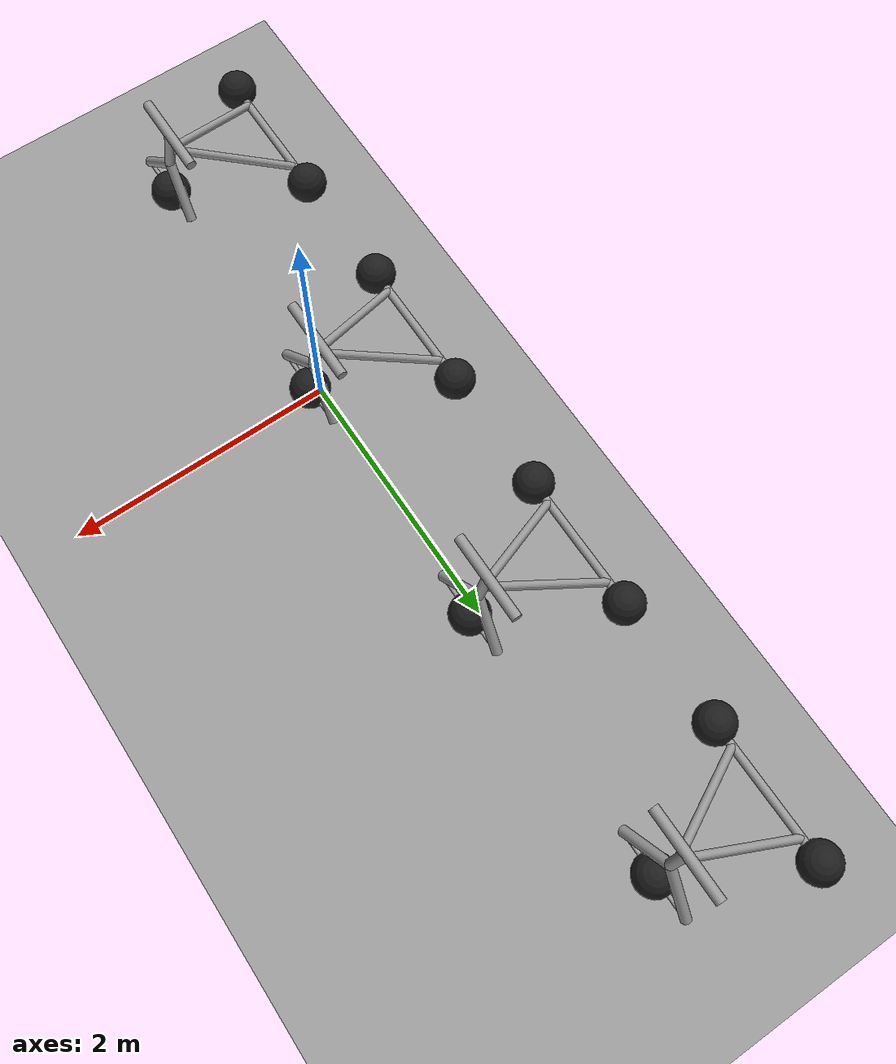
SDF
<?xml version="1.0" ?>
<sdf version="1.6">
  <world name="default">
    <gravity>-2 0 -9.75</gravity>
    <include>
      <uri>model://plowing_effect_ground_plane</uri>
    </include>
    <include>
      <uri>model://sun</uri>
    </include>

    <include>
      <uri>model://plowing_effect_trisphere_cycle</uri>
      <name>plowing_tricycle_no_slip</name>
      <pose>0 -2 0  0 0 0</pose>

      <plugin name="wheel_slip" filename="libWheelSlipPlugin.so">
        <wheel link_name="wheel_front">
          <slip_compliance_lateral>0</slip_compliance_lateral>
          <slip_compliance_longitudinal>0</slip_compliance_longitudinal>
          <wheel_normal_force>32</wheel_normal_force>
        </wheel>
        <wheel link_name="wheel_rear_left">
          <slip_compliance_lateral>0</slip_compliance_lateral>
          <slip_compliance_longitudinal>0</slip_compliance_longitudinal>
          <wheel_normal_force>32</wheel_normal_force>
        </wheel>
        <wheel link_name="wheel_rear_right">
          <slip_compliance_lateral>0</slip_compliance_lateral>
          <slip_compliance_longitudinal>0</slip_compliance_longitudinal>
          <wheel_normal_force>32</wheel_normal_force>
        </wheel>
      </plugin>

      <plugin name="joint_control" filename="libJointControlPlugin.so">
        <controller type="position">
          <joint>wheel_front_steer</joint>
          <target>0</target>
          <pid_gains>9 0 0.1</pid_gains>
        </controller>
        <controller type="velocity">
          <joint>wheel_rear_left_spin</joint>
          <joint>wheel_rear_right_spin</joint>
          <joint>wheel_front_spin</joint>
          <target>6.0</target>
          <pid_gains>9 0 0</pid_gains>
        </controller>
        <controller type="force">
          <joint>wheel_rear_left_spin</joint>
          <joint>wheel_rear_right_spin</joint>
          <target>2.15</target>
        </controller>
      </plugin>

    </include>

    <include>
      <uri>model://plowing_effect_trisphere_cycle</uri>
      <name>plowing_tricycle</name>
      <pose>0 0 0  0 0 0</pose>

      <plugin name="wheel_slip" filename="libWheelSlipPlugin.so">
        <wheel link_name="wheel_front">
          <slip_compliance_lateral>1.5</slip_compliance_lateral>
          <slip_compliance_longitudinal>1.5</slip_compliance_longitudinal>
          <wheel_normal_force>32</wheel_normal_force>
        </wheel>
        <wheel link_name="wheel_rear_left">
          <slip_compliance_lateral>1.5</slip_compliance_lateral>
          <slip_compliance_longitudinal>1.5</slip_compliance_longitudinal>
          <wheel_normal_force>32</wheel_normal_force>
        </wheel>
        <wheel link_name="wheel_rear_right">
          <slip_compliance_lateral>1.5</slip_compliance_lateral>
          <slip_compliance_longitudinal>1.5</slip_compliance_longitudinal>
          <wheel_normal_force>32</wheel_normal_force>
        </wheel>
      </plugin>

      <plugin name="joint_control" filename="libJointControlPlugin.so">
        <controller type="position">
          <joint>wheel_front_steer</joint>
          <target>0</target>
          <pid_gains>9 0 0.1</pid_gains>
        </controller>
        <controller type="velocity">
          <joint>wheel_rear_left_spin</joint>
          <joint>wheel_rear_right_spin</joint>
          <joint>wheel_front_spin</joint>
          <target>6.0</target>
          <pid_gains>9 0 0</pid_gains>
        </controller>
        <controller type="force">
          <joint>wheel_rear_left_spin</joint>
          <joint>wheel_rear_right_spin</joint>
          <target>2.15</target>
        </controller>
      </plugin>

    </include>

    <include>
      <uri>model://plowing_nonlinear_slip_trisphere_cycle</uri>
      <name>nonlinear_slip_tricycle</name>
      <pose>0 2 0  0 0 0</pose>

      <plugin name="wheel_slip" filename="libWheelSlipPlugin.so">
        <wheel link_name="wheel_front">
          <slip_compliance_lateral>1.5</slip_compliance_lateral>
          <slip_compliance_longitudinal>1.5</slip_compliance_longitudinal>
          <wheel_normal_force>32</wheel_normal_force>
        </wheel>
        <wheel link_name="wheel_rear_left">
          <slip_compliance_lateral>1.5</slip_compliance_lateral>
          <slip_compliance_longitudinal>1.5</slip_compliance_longitudinal>
          <wheel_normal_force>32</wheel_normal_force>
        </wheel>
        <wheel link_name="wheel_rear_right">
          <slip_compliance_lateral>1.5</slip_compliance_lateral>
          <slip_compliance_longitudinal>1.5</slip_compliance_longitudinal>
          <wheel_normal_force>32</wheel_normal_force>
        </wheel>
      </plugin>

      <plugin name="joint_control" filename="libJointControlPlugin.so">
        <controller type="position">
          <joint>wheel_front_steer</joint>
          <target>0</target>
          <pid_gains>9 0 0.1</pid_gains>
        </controller>
        <controller type="velocity">
          <joint>wheel_rear_left_spin</joint>
          <joint>wheel_rear_right_spin</joint>
          <joint>wheel_front_spin</joint>
          <target>6.0</target>
          <pid_gains>9 0 0</pid_gains>
        </controller>
        <controller type="force">
          <joint>wheel_rear_left_spin</joint>
          <joint>wheel_rear_right_spin</joint>
          <target>2.15</target>
        </controller>
      </plugin>

    </include>

    <include>
      <uri>model://plowing_effect_trisphere_cycle</uri>
      <name>plowing_tricycle_higher_slip_compliance</name>
      <pose>0 4 0  0 0 0</pose>

      <plugin name="wheel_slip" filename="libWheelSlipPlugin.so">
        <wheel link_name="wheel_front">
          <slip_compliance_lateral>3.0</slip_compliance_lateral>
          <slip_compliance_longitudinal>3.0</slip_compliance_longitudinal>
          <wheel_normal_force>32</wheel_normal_force>
        </wheel>
        <wheel link_name="wheel_rear_left">
          <slip_compliance_lateral>3.0</slip_compliance_lateral>
          <slip_compliance_longitudinal>3.0</slip_compliance_longitudinal>
          <wheel_normal_force>32</wheel_normal_force>
        </wheel>
        <wheel link_name="wheel_rear_right">
          <slip_compliance_lateral>3.0</slip_compliance_lateral>
          <slip_compliance_longitudinal>3.0</slip_compliance_longitudinal>
          <wheel_normal_force>32</wheel_normal_force>
        </wheel>
      </plugin>

      <plugin name="joint_control" filename="libJointControlPlugin.so">
        <controller type="position">
          <joint>wheel_front_steer</joint>
          <target>0</target>
          <pid_gains>9 0 0.1</pid_gains>
        </controller>
        <controller type="velocity">
          <joint>wheel_rear_left_spin</joint>
          <joint>wheel_rear_right_spin</joint>
          <joint>wheel_front_spin</joint>
          <target>6.0</target>
          <pid_gains>9 0 0</pid_gains>
        </controller>
        <controller type="force">
          <joint>wheel_rear_left_spin</joint>
          <joint>wheel_rear_right_spin</joint>
          <target>2.15</target>
        </controller>
      </plugin>

    </include>

    <gui fullscreen='0'>
      <camera name='user_camera'>
        <pose>1.5 -4 2.5  0 0.5 1.6</pose>
        <view_controller>orbit</view_controller>
      </camera>
    </gui>
  </world>
</sdf>

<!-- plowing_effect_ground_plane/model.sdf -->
<sdf version="1.5">
  <model name="plowing_effect_ground_plane" xmlns:gz="https://gazebosim.org/schema">
    <static>true</static>
    <link name="link">
      <collision name="collision">
        <gz:plowing_terrain />
        <geometry>
          <plane>
            <normal>0 0 1</normal>
            <size>100 100</size>
          </plane>
        </geometry>
        <surface>
          <contact>
             <collide_bitmask>0xffff</collide_bitmask>
          </contact>
          <friction>
            <ode>
              <mu>100</mu>
              <mu2>50</mu2>
            </ode>
          </friction>
        </surface>
      </collision>
      <visual name="visual">
        <cast_shadows>false</cast_shadows>
        <geometry>
          <plane>
            <normal>0 0 1</normal>
            <size>100 100</size>
          </plane>
        </geometry>
        <material>
          <script>
            <uri>file://media/materials/scripts/gazebo.material</uri>
            <name>Gazebo/Grey</name>
          </script>
        </material>
      </visual>
    </link>
  </model>
</sdf>

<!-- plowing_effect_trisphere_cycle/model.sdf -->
<sdf version="1.6">
  <model name="plowing_effect_trisphere_cycle" xmlns:gz="https://gazebosim.org/schema">
    <link name="frame">
      <pose>-0.40855911616047164 0 0.38502293110800634  0 -0.522020852957719 0</pose>
      <inertial>
        <pose>0.0 0 0  0 0 0</pose>
        <mass>10</mass>
        <inertia>
          <ixx>0.22799999999999998</ixx>
          <iyy>0.7435210984814149</iyy>
          <izz>0.9655210984814149</izz>
          <ixy>0</ixy>
          <ixz>0</ixz>
          <iyz>0</iyz>
        </inertia>
      </inertial>
      <collision name="axle_collision">
        <pose>-0.4713346258704366 0 0  1.5707963267948966 0 0</pose>
        <geometry>
          <cylinder>
            <length>1.0392304845413263</length>
            <radius>0.03</radius>
          </cylinder>
        </geometry>
      </collision>
      <visual name="axle_visual">
        <pose>-0.4713346258704366 0 0  1.5707963267948966 0 0</pose>
        <geometry>
          <cylinder>
            <length>1.0392304845413263</length>
            <radius>0.03</radius>
          </cylinder>
        </geometry>
        <material>
          <script>
            <uri>file://media/materials/scripts/gazebo.material</uri>
            <name>Gazebo/Grey</name>
          </script>
        </material>
      </visual>
      <collision name="frame_left_collision">
        <pose>0 0.17155177419583564 0  0 1.5707963267948966 -0.3490658503988659</pose>
        <geometry>
          <cylinder>
            <length>1.0031676644991372</length>
            <radius>0.03</radius>
          </cylinder>
        </geometry>
      </collision>
      <visual name="frame_left_visual">
        <pose>0 0.17155177419583564 0  0 1.5707963267948966 -0.3490658503988659</pose>
        <geometry>
          <cylinder>
            <length>1.0031676644991372</length>
            <radius>0.03</radius>
          </cylinder>
        </geometry>
        <material>
          <script>
            <uri>file://media/materials/scripts/gazebo.material</uri>
            <name>Gazebo/Grey</name>
          </script>
        </material>
      </visual>
      <collision name="frame_right_collision">
        <pose>0 -0.17155177419583564 0  0 1.5707963267948966 0.3490658503988659</pose>
        <geometry>
          <cylinder>
            <length>1.0031676644991372</length>
            <radius>0.03</radius>
          </cylinder>
        </geometry>
      </collision>
      <visual name="frame_right_visual">
        <pose>0 -0.17155177419583564 0  0 1.5707963267948966 0.3490658503988659</pose>
        <geometry>
          <cylinder>
            <length>1.0031676644991372</length>
            <radius>0.03</radius>
          </cylinder>
        </geometry>
        <material>
          <script>
            <uri>file://media/materials/scripts/gazebo.material</uri>
            <name>Gazebo/Grey</name>
          </script>
        </material>
      </visual>
    </link>
    <link name="fork">
      <pose>0.04144088383952833 0 0.38502293110800634  0 -0.17453292519943295 0</pose>
      <inertial>
        <mass>3</mass>
        <inertia>
          <ixx>0.15820312499999997</ixx>
          <iyy>0.058359374999999984</iyy>
          <izz>0.10265624999999999</izz>
          <ixy>0</ixy>
          <ixz>0</ixz>
          <iyz>0</iyz>
        </inertia>
      </inertial>
      <collision name="handlebars_collision">
        <pose>0 0 0.397747564417433  1.5707963267948966 0 0</pose>
        <geometry>
          <cylinder>
            <length>0.6363961030678927</length>
            <radius>0.0375</radius>
          </cylinder>
        </geometry>
      </collision>
      <visual name="handlebars_visual">
        <pose>0 0 0.397747564417433  1.5707963267948966 0 0</pose>
        <geometry>
          <cylinder>
            <length>0.6363961030678927</length>
            <radius>0.0375</radius>
          </cylinder>
        </geometry>
        <material>
          <script>
            <uri>file://media/materials/scripts/gazebo.material</uri>
            <name>Gazebo/Grey</name>
          </script>
        </material>
      </visual>
      <collision name="headtube_collision">
        <pose>0 0 0.2386485386504598  0 0 0</pose>
        <geometry>
          <cylinder>
            <length>0.31819805153394637</length>
            <radius>0.0375</radius>
          </cylinder>
        </geometry>
      </collision>
      <visual name="headtube_visual">
        <pose>0 0 0.2386485386504598  0 0 0</pose>
        <geometry>
          <cylinder>
            <length>0.31819805153394637</length>
            <radius>0.0375</radius>
          </cylinder>
        </geometry>
        <material>
          <script>
            <uri>file://media/materials/scripts/gazebo.material</uri>
            <name>Gazebo/Grey</name>
          </script>
        </material>
      </visual>
      <collision name="spindle_collision">
        <pose>0 0 -0.23864853865045976  1.5707963267948966 0 0</pose>
        <geometry>
          <cylinder>
            <length>0.6363961030678927</length>
            <radius>0.015</radius>
          </cylinder>
        </geometry>
      </collision>
      <visual name="spindle_visual">
        <pose>0 0 -0.23864853865045976  1.5707963267948966 0 0</pose>
        <geometry>
          <cylinder>
            <length>0.6363961030678927</length>
            <radius>0.015</radius>
          </cylinder>
        </geometry>
        <material>
          <script>
            <uri>file://media/materials/scripts/gazebo.material</uri>
            <name>Gazebo/Grey</name>
          </script>
        </material>
      </visual>
      <collision name="fork_left_collision">
        <pose>0 0.15909902576697318 -0.07954951288348658  0.7853981633974483 0 0</pose>
        <geometry>
          <cylinder>
            <length>0.45</length>
            <radius>0.0375</radius>
          </cylinder>
        </geometry>
      </collision>
      <visual name="fork_left_visual">
        <pose>0 0.15909902576697318 -0.07954951288348658  0.7853981633974483 0 0</pose>
        <geometry>
          <cylinder>
            <length>0.45</length>
            <radius>0.0375</radius>
          </cylinder>
        </geometry>
        <material>
          <script>
            <uri>file://media/materials/scripts/gazebo.material</uri>
            <name>Gazebo/Grey</name>
          </script>
        </material>
      </visual>
      <collision name="fork_right_collision">
        <pose>0 -0.15909902576697318 -0.07954951288348658  -0.7853981633974483 0 0</pose>
        <geometry>
          <cylinder>
            <length>0.45</length>
            <radius>0.0375</radius>
          </cylinder>
        </geometry>
      </collision>
      <visual name="fork_right_visual">
        <pose>0 -0.15909902576697318 -0.07954951288348658  -0.7853981633974483 0 0</pose>
        <geometry>
          <cylinder>
            <length>0.45</length>
            <radius>0.0375</radius>
          </cylinder>
        </geometry>
        <material>
          <script>
            <uri>file://media/materials/scripts/gazebo.material</uri>
            <name>Gazebo/Grey</name>
          </script>
        </material>
      </visual>
    </link>
    <link name="wheel_front">
      <pose>0.08288176767905665 0 0.15  0 0 0</pose>
      <inertial>
        <mass>0.5</mass>
        <inertia>
          <ixx>0.0045</ixx>
          <iyy>0.0045</iyy>
          <izz>0.0045</izz>
          <ixy>0</ixy>
          <ixz>0</ixz>
          <iyz>0</iyz>
        </inertia>
      </inertial>
      <collision name="collision">
        <gz:plowing_wheel>
          <max_degrees>5</max_degrees>
          <deadband_velocity>0.3</deadband_velocity>
          <saturation_velocity>0.4</saturation_velocity>
        </gz:plowing_wheel>
        <geometry>
          <sphere>
            <radius>0.15</radius>
          </sphere>
        </geometry>
        <surface>
          <contact>
            <ode>
              <kp>4000</kp>
              <kd>16</kd>
              <max_vel>10</max_vel>
              <min_depth>0.0005</min_depth>
            </ode>
          </contact>
          <friction>
            <ode>
              <mu>0.7</mu>
              <mu2>0.7</mu2>
              <fdir1>0 1 0</fdir1>
            </ode>
          </friction>
        </surface>
      </collision>
      <visual name="visual">
        <geometry>
          <sphere>
            <radius>0.15</radius>
          </sphere>
        </geometry>
        <material>
          <script>
            <uri>file://media/materials/scripts/gazebo.material</uri>
            <name>Gazebo/Black</name>
          </script>
        </material>
      </visual>
    </link>
    <joint name="wheel_front_steer" type="revolute">
      <parent>frame</parent>
      <child>fork</child>
      <axis>
        <xyz>0 0 1</xyz>
        <dynamics>
        <friction>1.0</friction>
        </dynamics>
        <limit>
          <lower>-0.9599310885968813</lower>
          <upper>0.9599310885968813</upper>
        </limit>
      </axis>
    </joint>
    <joint name="wheel_front_spin" type="revolute">
      <parent>fork</parent>
      <child>wheel_front</child>
      <axis>
        <xyz>0 1 0</xyz>
      </axis>
    </joint>
    <link name="wheel_rear_left">
      <pose>-0.8171182323209433 0.5196152422706631 0.15  0 0 0</pose>
      <inertial>
        <mass>0.5</mass>
        <inertia>
          <ixx>0.0045</ixx>
          <iyy>0.0045</iyy>
          <izz>0.0045</izz>
          <ixy>0</ixy>
          <ixz>0</ixz>
          <iyz>0</iyz>
        </inertia>
      </inertial>
      <collision name="collision">
        <gz:plowing_wheel>
          <max_degrees>5</max_degrees>
          <deadband_velocity>0.3</deadband_velocity>
          <saturation_velocity>0.4</saturation_velocity>
        </gz:plowing_wheel>
        <geometry>
          <sphere>
            <radius>0.15</radius>
          </sphere>
        </geometry>
        <surface>
          <contact>
            <ode>
              <kp>4000</kp>
              <kd>16</kd>
              <max_vel>10</max_vel>
              <min_depth>0.0005</min_depth>
            </ode>
          </contact>
          <friction>
            <ode>
              <mu>0.7</mu>
              <mu2>0.7</mu2>
              <fdir1>0 1 0</fdir1>
            </ode>
          </friction>
        </surface>
      </collision>
      <visual name="visual">
        <geometry>
          <sphere>
            <radius>0.15</radius>
          </sphere>
        </geometry>
        <material>
          <script>
            <uri>file://media/materials/scripts/gazebo.material</uri>
            <name>Gazebo/Black</name>
          </script>
        </material>
      </visual>
    </link>
    <joint name="wheel_rear_left_spin" type="revolute">
      <parent>frame</parent>
      <child>wheel_rear_left</child>
      <axis>
        <xyz>0 1 0</xyz>
      </axis>
    </joint>
    <link name="wheel_rear_right">
      <pose>-0.8171182323209433 -0.5196152422706631 0.15  0 0 0</pose>
      <inertial>
        <mass>0.5</mass>
        <inertia>
          <ixx>0.0045</ixx>
          <iyy>0.0045</iyy>
          <izz>0.0045</izz>
          <ixy>0</ixy>
          <ixz>0</ixz>
          <iyz>0</iyz>
        </inertia>
      </inertial>
      <collision name="collision">
        <gz:plowing_wheel>
          <max_degrees>5</max_degrees>
          <deadband_velocity>0.3</deadband_velocity>
          <saturation_velocity>0.4</saturation_velocity>
        </gz:plowing_wheel>
        <geometry>
          <sphere>
            <radius>0.15</radius>
          </sphere>
        </geometry>
        <surface>
          <contact>
            <ode>
              <kp>4000</kp>
              <kd>16</kd>
              <max_vel>10</max_vel>
              <min_depth>0.0005</min_depth>
            </ode>
          </contact>
          <friction>
            <ode>
              <mu>0.7</mu>
              <mu2>0.7</mu2>
              <fdir1>0 1 0</fdir1>
            </ode>
          </friction>
        </surface>
      </collision>
      <visual name="visual">
        <geometry>
          <sphere>
            <radius>0.15</radius>
          </sphere>
        </geometry>
        <material>
          <script>
            <uri>file://media/materials/scripts/gazebo.material</uri>
            <name>Gazebo/Black</name>
          </script>
        </material>
      </visual>
    </link>
    <joint name="wheel_rear_right_spin" type="revolute">
      <parent>frame</parent>
      <child>wheel_rear_right</child>
      <axis>
        <xyz>0 1 0</xyz>
      </axis>
    </joint>
  </model>
</sdf>

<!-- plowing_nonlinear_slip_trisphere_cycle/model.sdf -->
<sdf version="1.6">
  <model name="plowing_effect_trisphere_cycle" xmlns:gz="https://gazebosim.org/schema">
    <link name="frame">
      <pose>-0.40855911616047164 0 0.38502293110800634  0 -0.522020852957719 0</pose>
      <inertial>
        <pose>0.0 0 0  0 0 0</pose>
        <mass>10</mass>
        <inertia>
          <ixx>0.22799999999999998</ixx>
          <iyy>0.7435210984814149</iyy>
          <izz>0.9655210984814149</izz>
          <ixy>0</ixy>
          <ixz>0</ixz>
          <iyz>0</iyz>
        </inertia>
      </inertial>
      <collision name="axle_collision">
        <pose>-0.4713346258704366 0 0  1.5707963267948966 0 0</pose>
        <geometry>
          <cylinder>
            <length>1.0392304845413263</length>
            <radius>0.03</radius>
          </cylinder>
        </geometry>
      </collision>
      <visual name="axle_visual">
        <pose>-0.4713346258704366 0 0  1.5707963267948966 0 0</pose>
        <geometry>
          <cylinder>
            <length>1.0392304845413263</length>
            <radius>0.03</radius>
          </cylinder>
        </geometry>
        <material>
          <script>
            <uri>file://media/materials/scripts/gazebo.material</uri>
            <name>Gazebo/Grey</name>
          </script>
        </material>
      </visual>
      <collision name="frame_left_collision">
        <pose>0 0.17155177419583564 0  0 1.5707963267948966 -0.3490658503988659</pose>
        <geometry>
          <cylinder>
            <length>1.0031676644991372</length>
            <radius>0.03</radius>
          </cylinder>
        </geometry>
      </collision>
      <visual name="frame_left_visual">
        <pose>0 0.17155177419583564 0  0 1.5707963267948966 -0.3490658503988659</pose>
        <geometry>
          <cylinder>
            <length>1.0031676644991372</length>
            <radius>0.03</radius>
          </cylinder>
        </geometry>
        <material>
          <script>
            <uri>file://media/materials/scripts/gazebo.material</uri>
            <name>Gazebo/Grey</name>
          </script>
        </material>
      </visual>
      <collision name="frame_right_collision">
        <pose>0 -0.17155177419583564 0  0 1.5707963267948966 0.3490658503988659</pose>
        <geometry>
          <cylinder>
            <length>1.0031676644991372</length>
            <radius>0.03</radius>
          </cylinder>
        </geometry>
      </collision>
      <visual name="frame_right_visual">
        <pose>0 -0.17155177419583564 0  0 1.5707963267948966 0.3490658503988659</pose>
        <geometry>
          <cylinder>
            <length>1.0031676644991372</length>
            <radius>0.03</radius>
          </cylinder>
        </geometry>
        <material>
          <script>
            <uri>file://media/materials/scripts/gazebo.material</uri>
            <name>Gazebo/Grey</name>
          </script>
        </material>
      </visual>
    </link>
    <link name="fork">
      <pose>0.04144088383952833 0 0.38502293110800634  0 -0.17453292519943295 0</pose>
      <inertial>
        <mass>3</mass>
        <inertia>
          <ixx>0.15820312499999997</ixx>
          <iyy>0.058359374999999984</iyy>
          <izz>0.10265624999999999</izz>
          <ixy>0</ixy>
          <ixz>0</ixz>
          <iyz>0</iyz>
        </inertia>
      </inertial>
      <collision name="handlebars_collision">
        <pose>0 0 0.397747564417433  1.5707963267948966 0 0</pose>
        <geometry>
          <cylinder>
            <length>0.6363961030678927</length>
            <radius>0.0375</radius>
          </cylinder>
        </geometry>
      </collision>
      <visual name="handlebars_visual">
        <pose>0 0 0.397747564417433  1.5707963267948966 0 0</pose>
        <geometry>
          <cylinder>
            <length>0.6363961030678927</length>
            <radius>0.0375</radius>
          </cylinder>
        </geometry>
        <material>
          <script>
            <uri>file://media/materials/scripts/gazebo.material</uri>
            <name>Gazebo/Grey</name>
          </script>
        </material>
      </visual>
      <collision name="headtube_collision">
        <pose>0 0 0.2386485386504598  0 0 0</pose>
        <geometry>
          <cylinder>
            <length>0.31819805153394637</length>
            <radius>0.0375</radius>
          </cylinder>
        </geometry>
      </collision>
      <visual name="headtube_visual">
        <pose>0 0 0.2386485386504598  0 0 0</pose>
        <geometry>
          <cylinder>
            <length>0.31819805153394637</length>
            <radius>0.0375</radius>
          </cylinder>
        </geometry>
        <material>
          <script>
            <uri>file://media/materials/scripts/gazebo.material</uri>
            <name>Gazebo/Grey</name>
          </script>
        </material>
      </visual>
      <collision name="spindle_collision">
        <pose>0 0 -0.23864853865045976  1.5707963267948966 0 0</pose>
        <geometry>
          <cylinder>
            <length>0.6363961030678927</length>
            <radius>0.015</radius>
          </cylinder>
        </geometry>
      </collision>
      <visual name="spindle_visual">
        <pose>0 0 -0.23864853865045976  1.5707963267948966 0 0</pose>
        <geometry>
          <cylinder>
            <length>0.6363961030678927</length>
            <radius>0.015</radius>
          </cylinder>
        </geometry>
        <material>
          <script>
            <uri>file://media/materials/scripts/gazebo.material</uri>
            <name>Gazebo/Grey</name>
          </script>
        </material>
      </visual>
      <collision name="fork_left_collision">
        <pose>0 0.15909902576697318 -0.07954951288348658  0.7853981633974483 0 0</pose>
        <geometry>
          <cylinder>
            <length>0.45</length>
            <radius>0.0375</radius>
          </cylinder>
        </geometry>
      </collision>
      <visual name="fork_left_visual">
        <pose>0 0.15909902576697318 -0.07954951288348658  0.7853981633974483 0 0</pose>
        <geometry>
          <cylinder>
            <length>0.45</length>
            <radius>0.0375</radius>
          </cylinder>
        </geometry>
        <material>
          <script>
            <uri>file://media/materials/scripts/gazebo.material</uri>
            <name>Gazebo/Grey</name>
          </script>
        </material>
      </visual>
      <collision name="fork_right_collision">
        <pose>0 -0.15909902576697318 -0.07954951288348658  -0.7853981633974483 0 0</pose>
        <geometry>
          <cylinder>
            <length>0.45</length>
            <radius>0.0375</radius>
          </cylinder>
        </geometry>
      </collision>
      <visual name="fork_right_visual">
        <pose>0 -0.15909902576697318 -0.07954951288348658  -0.7853981633974483 0 0</pose>
        <geometry>
          <cylinder>
            <length>0.45</length>
            <radius>0.0375</radius>
          </cylinder>
        </geometry>
        <material>
          <script>
            <uri>file://media/materials/scripts/gazebo.material</uri>
            <name>Gazebo/Grey</name>
          </script>
        </material>
      </visual>
    </link>
    <link name="wheel_front">
      <pose>0.08288176767905665 0 0.15  0 0 0</pose>
      <inertial>
        <mass>0.5</mass>
        <inertia>
          <ixx>0.0045</ixx>
          <iyy>0.0045</iyy>
          <izz>0.0045</izz>
          <ixy>0</ixy>
          <ixz>0</ixz>
          <iyz>0</iyz>
        </inertia>
      </inertial>
      <collision name="collision">
        <gz:plowing_wheel>
          <max_degrees>5</max_degrees>
          <deadband_velocity>0.3</deadband_velocity>
          <saturation_velocity>0.4</saturation_velocity>
          <nonlinear_slip>
            <lower>
              <degree>-10</degree>
              <per_degree>0.0</per_degree>
            </lower>
            <lower>
              <degree>-6</degree>
              <per_degree>0.25</per_degree>
            </lower>
            <upper>
              <degree>6</degree>
              <per_degree>0.25</per_degree>
            </upper>
            <upper>
              <degree>10</degree>
              <per_degree>0.0</per_degree>
            </upper>
          </nonlinear_slip>
        </gz:plowing_wheel>
        <geometry>
          <sphere>
            <radius>0.15</radius>
          </sphere>
        </geometry>
        <surface>
          <contact>
            <ode>
              <kp>4000</kp>
              <kd>16</kd>
              <max_vel>10</max_vel>
              <min_depth>0.0005</min_depth>
            </ode>
          </contact>
          <friction>
            <ode>
              <mu>0.7</mu>
              <mu2>0.7</mu2>
              <fdir1>0 1 0</fdir1>
            </ode>
          </friction>
        </surface>
      </collision>
      <visual name="visual">
        <geometry>
          <sphere>
            <radius>0.15</radius>
          </sphere>
        </geometry>
        <material>
          <script>
            <uri>file://media/materials/scripts/gazebo.material</uri>
            <name>Gazebo/Black</name>
          </script>
        </material>
      </visual>
    </link>
    <joint name="wheel_front_steer" type="revolute">
      <parent>frame</parent>
      <child>fork</child>
      <axis>
        <xyz>0 0 1</xyz>
        <dynamics>
        <friction>1.0</friction>
        </dynamics>
        <limit>
          <lower>-0.9599310885968813</lower>
          <upper>0.9599310885968813</upper>
        </limit>
      </axis>
    </joint>
    <joint name="wheel_front_spin" type="revolute">
      <parent>fork</parent>
      <child>wheel_front</child>
      <axis>
        <xyz>0 1 0</xyz>
      </axis>
    </joint>
    <link name="wheel_rear_left">
      <pose>-0.8171182323209433 0.5196152422706631 0.15  0 0 0</pose>
      <inertial>
        <mass>0.5</mass>
        <inertia>
          <ixx>0.0045</ixx>
          <iyy>0.0045</iyy>
          <izz>0.0045</izz>
          <ixy>0</ixy>
          <ixz>0</ixz>
          <iyz>0</iyz>
        </inertia>
      </inertial>
      <collision name="collision">
        <gz:plowing_wheel>
          <max_degrees>5</max_degrees>
          <deadband_velocity>0.3</deadband_velocity>
          <saturation_velocity>0.4</saturation_velocity>
          <nonlinear_slip>
            <lower>
              <degree>-10</degree>
              <per_degree>0.0</per_degree>
            </lower>
            <lower>
              <degree>-6</degree>
              <per_degree>0.25</per_degree>
            </lower>
            <upper>
              <degree>6</degree>
              <per_degree>0.25</per_degree>
            </upper>
            <upper>
              <degree>10</degree>
              <per_degree>0.0</per_degree>
            </upper>
          </nonlinear_slip>
        </gz:plowing_wheel>
        <geometry>
          <sphere>
            <radius>0.15</radius>
          </sphere>
        </geometry>
        <surface>
          <contact>
            <ode>
              <kp>4000</kp>
              <kd>16</kd>
              <max_vel>10</max_vel>
              <min_depth>0.0005</min_depth>
            </ode>
          </contact>
          <friction>
            <ode>
              <mu>0.7</mu>
              <mu2>0.7</mu2>
              <fdir1>0 1 0</fdir1>
            </ode>
          </friction>
        </surface>
      </collision>
      <visual name="visual">
        <geometry>
          <sphere>
            <radius>0.15</radius>
          </sphere>
        </geometry>
        <material>
          <script>
            <uri>file://media/materials/scripts/gazebo.material</uri>
            <name>Gazebo/Black</name>
          </script>
        </material>
      </visual>
    </link>
    <joint name="wheel_rear_left_spin" type="revolute">
      <parent>frame</parent>
      <child>wheel_rear_left</child>
      <axis>
        <xyz>0 1 0</xyz>
      </axis>
    </joint>
    <link name="wheel_rear_right">
      <pose>-0.8171182323209433 -0.5196152422706631 0.15  0 0 0</pose>
      <inertial>
        <mass>0.5</mass>
        <inertia>
          <ixx>0.0045</ixx>
          <iyy>0.0045</iyy>
          <izz>0.0045</izz>
          <ixy>0</ixy>
          <ixz>0</ixz>
          <iyz>0</iyz>
        </inertia>
      </inertial>
      <collision name="collision">
        <gz:plowing_wheel>
          <max_degrees>5</max_degrees>
          <deadband_velocity>0.3</deadband_velocity>
          <saturation_velocity>0.4</saturation_velocity>
          <nonlinear_slip>
            <lower>
              <degree>-10</degree>
              <per_degree>0.0</per_degree>
            </lower>
            <lower>
              <degree>-6</degree>
              <per_degree>0.25</per_degree>
            </lower>
            <upper>
              <degree>6</degree>
              <per_degree>0.25</per_degree>
            </upper>
            <upper>
              <degree>10</degree>
              <per_degree>0.0</per_degree>
            </upper>
          </nonlinear_slip>
        </gz:plowing_wheel>
        <geometry>
          <sphere>
            <radius>0.15</radius>
          </sphere>
        </geometry>
        <surface>
          <contact>
            <ode>
              <kp>4000</kp>
              <kd>16</kd>
              <max_vel>10</max_vel>
              <min_depth>0.0005</min_depth>
            </ode>
          </contact>
          <friction>
            <ode>
              <mu>0.7</mu>
              <mu2>0.7</mu2>
              <fdir1>0 1 0</fdir1>
            </ode>
          </friction>
        </surface>
      </collision>
      <visual name="visual">
        <geometry>
          <sphere>
            <radius>0.15</radius>
          </sphere>
        </geometry>
        <material>
          <script>
            <uri>file://media/materials/scripts/gazebo.material</uri>
            <name>Gazebo/Black</name>
          </script>
        </material>
      </visual>
    </link>
    <joint name="wheel_rear_right_spin" type="revolute">
      <parent>frame</parent>
      <child>wheel_rear_right</child>
      <axis>
        <xyz>0 1 0</xyz>
      </axis>
    </joint>
  </model>
</sdf>
